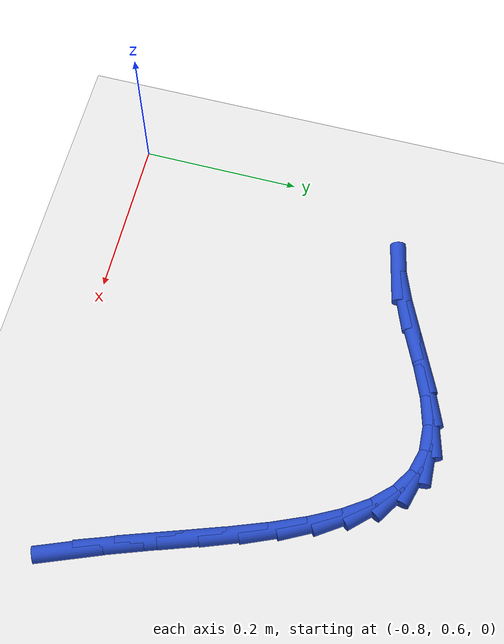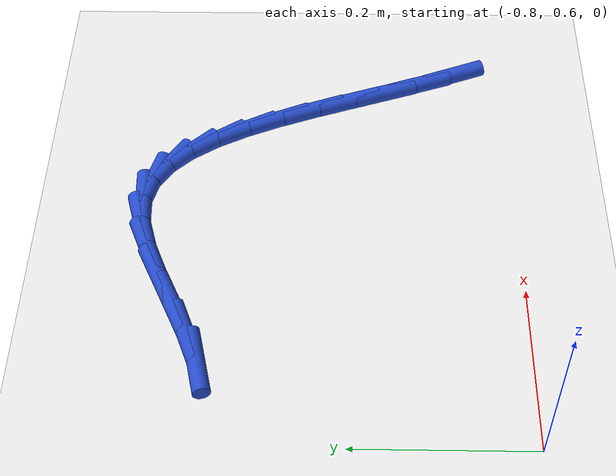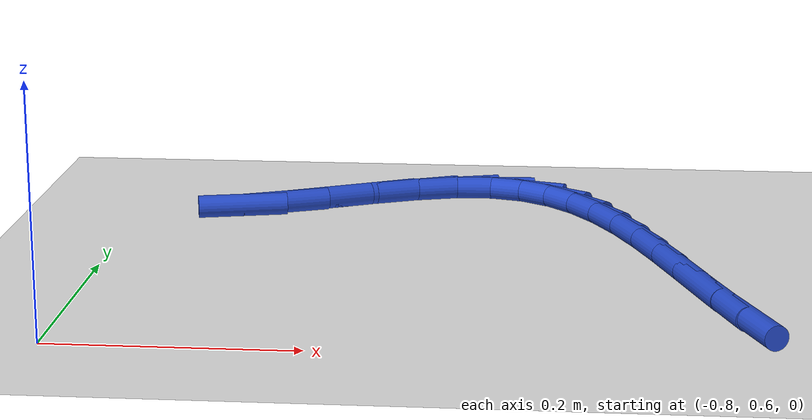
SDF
<sdf version="1.6">
 <world name="default">
  <model name="ground_plane">
   <static>1</static>
   <link name="link">
    <collision name="collision">
     <geometry><plane><normal>0 0 1</normal><size>100 100</size></plane></geometry>
     <surface><friction><ode><mu>100</mu><mu2>50</mu2></ode></friction></surface>
    </collision>
    <visual name="visual">
     <cast_shadows>0</cast_shadows>
     <geometry><plane><normal>0 0 1</normal><size>100 100</size></plane></geometry>
     <material>
      <script><uri>file://media/materials/scripts/gazebo.material</uri><name>Gazebo/WhiteGlow</name></script>
     </material>
    </visual>
   </link>
  </model>
  <model name="line">
   <link name="link_19">
    <pose>-0.2670817480333362 0.664844877062652 0.01 0 1.57 -1.1920426459754478</pose>
    <collision name="collision">
     <geometry><cylinder><radius>0.01</radius><length>0.08</length></cylinder></geometry>
    </collision>
    <visual name="visual">
     <material>
      <script><name>Gazebo/Blue</name><uri>file://media/materials/scripts/gazebo.material</uri></script>
     </material>
     <geometry><cylinder><radius>0.01</radius><length>0.08</length></cylinder></geometry>
    </visual>
   </link>
   <link name="link_20">
    <pose>-0.2841831626674108 0.7078166787511693 0.01 0 1.57 -1.2230222389523542</pose>
    <collision name="collision">
     <geometry><cylinder><radius>0.01</radius><length>0.08</length></cylinder></geometry>
    </collision>
    <visual name="visual">
     <material>
      <script><name>Gazebo/Blue</name><uri>file://media/materials/scripts/gazebo.material</uri></script>
     </material>
     <geometry><cylinder><radius>0.01</radius><length>0.08</length></cylinder></geometry>
    </visual>
   </link>
   <link name="link_21">
    <pose>-0.30031186336751287 0.7523086602588065 0.01 0 1.57 -1.2355864044533307</pose>
    <collision name="collision">
     <geometry><cylinder><radius>0.01</radius><length>0.08</length></cylinder></geometry>
    </collision>
    <visual name="visual">
     <material>
      <script><name>Gazebo/Blue</name><uri>file://media/materials/scripts/gazebo.material</uri></script>
     </material>
     <geometry><cylinder><radius>0.01</radius><length>0.08</length></cylinder></geometry>
    </visual>
   </link>
   <link name="link_22">
    <pose>-0.31595208144126036 0.7972058225592461 0.01 0 1.57 -1.230690257011214</pose>
    <collision name="collision">
     <geometry><cylinder><radius>0.01</radius><length>0.08</length></cylinder></geometry>
    </collision>
    <visual name="visual">
     <material>
      <script><name>Gazebo/Blue</name><uri>file://media/materials/scripts/gazebo.material</uri></script>
     </material>
     <geometry><cylinder><radius>0.01</radius><length>0.08</length></cylinder></geometry>
    </visual>
   </link>
   <link name="link_23">
    <pose>-0.33158804819627113 0.8413931666261711 0.01 0 1.57 -1.2072742325701524</pose>
    <collision name="collision">
     <geometry><cylinder><radius>0.01</radius><length>0.08</length></cylinder></geometry>
    </collision>
    <visual name="visual">
     <material>
      <script><name>Gazebo/Blue</name><uri>file://media/materials/scripts/gazebo.material</uri></script>
     </material>
     <geometry><cylinder><radius>0.01</radius><length>0.08</length></cylinder></geometry>
    </visual>
   </link>
   <link name="link_24">
    <pose>-0.34770399494016346 0.8837556934332651 0.01 0 1.57 -1.161952920179598</pose>
    <collision name="collision">
     <geometry><cylinder><radius>0.01</radius><length>0.08</length></cylinder></geometry>
    </collision>
    <visual name="visual">
     <material>
      <script><name>Gazebo/Blue</name><uri>file://media/materials/scripts/gazebo.material</uri></script>
     </material>
     <geometry><cylinder><radius>0.01</radius><length>0.08</length></cylinder></geometry>
    </visual>
   </link>
   <link name="link_25">
    <pose>-0.3647841529805552 0.9231784039542107 0.01 0 1.57 -1.0882262288710491</pose>
    <collision name="collision">
     <geometry><cylinder><radius>0.01</radius><length>0.08</length></cylinder></geometry>
    </collision>
    <visual name="visual">
     <material>
      <script><name>Gazebo/Blue</name><uri>file://media/materials/scripts/gazebo.material</uri></script>
     </material>
     <geometry><cylinder><radius>0.01</radius><length>0.08</length></cylinder></geometry>
    </visual>
   </link>
   <link name="link_26">
    <pose>-0.3833127536250644 0.958546299162691 0.01 0 1.57 -0.9752840862644171</pose>
    <collision name="collision">
     <geometry><cylinder><radius>0.01</radius><length>0.08</length></cylinder></geometry>
    </collision>
    <visual name="visual">
     <material>
      <script><name>Gazebo/Blue</name><uri>file://media/materials/scripts/gazebo.material</uri></script>
     </material>
     <geometry><cylinder><radius>0.01</radius><length>0.08</length></cylinder></geometry>
    </visual>
   </link>
   <link name="link_27">
    <pose>-0.4037740281813093 0.9887443800323892 0.01 0 1.57 -0.8075158579327568</pose>
    <collision name="collision">
     <geometry><cylinder><radius>0.01</radius><length>0.08</length></cylinder></geometry>
    </collision>
    <visual name="visual">
     <material>
      <script><name>Gazebo/Blue</name><uri>file://media/materials/scripts/gazebo.material</uri></script>
     </material>
     <geometry><cylinder><radius>0.01</radius><length>0.08</length></cylinder></geometry>
    </visual>
   </link>
   <link name="link_28">
    <pose>-0.42665220795690784 1.0126576475369884 0.01 0 1.57 -0.5697174143870546</pose>
    <collision name="collision">
     <geometry><cylinder><radius>0.01</radius><length>0.08</length></cylinder></geometry>
    </collision>
    <visual name="visual">
     <material>
      <script><name>Gazebo/Blue</name><uri>file://media/materials/scripts/gazebo.material</uri></script>
     </material>
     <geometry><cylinder><radius>0.01</radius><length>0.08</length></cylinder></geometry>
    </visual>
   </link>
   <link name="link_29">
    <pose>-0.45243152425947775 1.0291711026501713 0.01 0 1.57 -0.26767611321087653</pose>
    <collision name="collision">
     <geometry><cylinder><radius>0.01</radius><length>0.08</length></cylinder></geometry>
    </collision>
    <visual name="visual">
     <material>
      <script><name>Gazebo/Blue</name><uri>file://media/materials/scripts/gazebo.material</uri></script>
     </material>
     <geometry><cylinder><radius>0.01</radius><length>0.08</length></cylinder></geometry>
    </visual>
   </link>
   <link name="link_30">
    <pose>-0.4815962083966374 1.037169746345621 0.01 0 1.57 0.047332688127085285</pose>
    <collision name="collision">
     <geometry><cylinder><radius>0.01</radius><length>0.08</length></cylinder></geometry>
    </collision>
    <visual name="visual">
     <material>
      <script><name>Gazebo/Blue</name><uri>file://media/materials/scripts/gazebo.material</uri></script>
     </material>
     <geometry><cylinder><radius>0.01</radius><length>0.08</length></cylinder></geometry>
    </visual>
   </link>
   <link name="link_31">
    <pose>-0.5146005050724667 1.0356063965888667 0.01 0 1.57 0.274340062868435</pose>
    <collision name="collision">
     <geometry><cylinder><radius>0.01</radius><length>0.08</length></cylinder></geometry>
    </collision>
    <visual name="visual">
     <material>
      <script><name>Gazebo/Blue</name><uri>file://media/materials/scripts/gazebo.material</uri></script>
     </material>
     <geometry><cylinder><radius>0.01</radius><length>0.08</length></cylinder></geometry>
    </visual>
   </link>
   <link name="link_32">
    <pose>-0.5510525209742163 1.0253474770298956 0.01 0 1.57 0.39226820996565503</pose>
    <collision name="collision">
     <geometry><cylinder><radius>0.01</radius><length>0.08</length></cylinder></geometry>
    </collision>
    <visual name="visual">
     <material>
      <script><name>Gazebo/Blue</name><uri>file://media/materials/scripts/gazebo.material</uri></script>
     </material>
     <geometry><cylinder><radius>0.01</radius><length>0.08</length></cylinder></geometry>
    </visual>
   </link>
   <link name="link_33">
    <pose>-0.5896169392094083 1.0093930357264294 0.01 0 1.57 0.44083358409011675</pose>
    <collision name="collision">
     <geometry><cylinder><radius>0.01</radius><length>0.08</length></cylinder></geometry>
    </collision>
    <visual name="visual">
     <material>
      <script><name>Gazebo/Blue</name><uri>file://media/materials/scripts/gazebo.material</uri></script>
     </material>
     <geometry><cylinder><radius>0.01</radius><length>0.08</length></cylinder></geometry>
    </visual>
   </link>
   <link name="link_34">
    <pose>-0.6289089268959585 0.9908551049247001 0.01 0 1.57 0.4361987942885245</pose>
    <collision name="collision">
     <geometry><cylinder><radius>0.01</radius><length>0.08</length></cylinder></geometry>
    </collision>
    <visual name="visual">
     <material>
      <script><name>Gazebo/Blue</name><uri>file://media/materials/scripts/gazebo.material</uri></script>
     </material>
     <geometry><cylinder><radius>0.01</radius><length>0.08</length></cylinder></geometry>
    </visual>
   </link>
   <link name="link_35">
    <pose>-0.6675436511517829 0.9728457168709397 0.01 0 1.57 0.3741711489900024</pose>
    <collision name="collision">
     <geometry><cylinder><radius>0.01</radius><length>0.08</length></cylinder></geometry>
    </collision>
    <visual name="visual">
     <material>
      <script><name>Gazebo/Blue</name><uri>file://media/materials/scripts/gazebo.material</uri></script>
     </material>
     <geometry><cylinder><radius>0.01</radius><length>0.08</length></cylinder></geometry>
    </visual>
   </link>
   <link name="link_36">
    <pose>-0.7041362790947978 0.9584769038113803 0.01 0 1.57 0.22572744383465707</pose>
    <collision name="collision">
     <geometry><cylinder><radius>0.01</radius><length>0.08</length></cylinder></geometry>
    </collision>
    <visual name="visual">
     <material>
      <script><name>Gazebo/Blue</name><uri>file://media/materials/scripts/gazebo.material</uri></script>
     </material>
     <geometry><cylinder><radius>0.01</radius><length>0.08</length></cylinder></geometry>
    </visual>
   </link>
  </model>
 </world>
</sdf>
